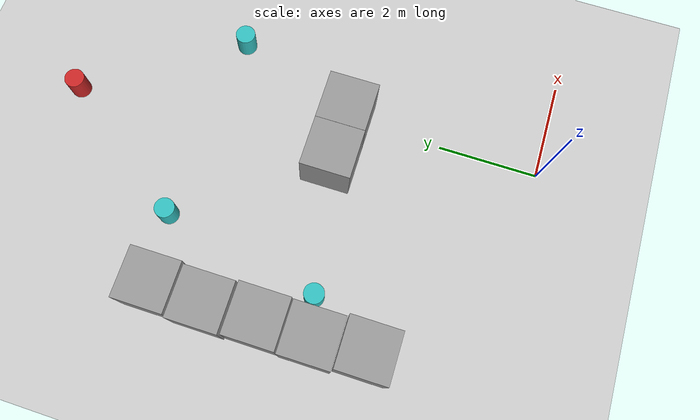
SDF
<sdf version="1.4">
 <world name="default">
  <model name="ground_plane">
   <static>1</static>
   <link name="link">
    <collision name="collision">
     <geometry><plane><normal>0 0 1</normal><size>100 100</size></plane></geometry>
     <surface><friction><ode><mu>100</mu><mu2>50</mu2></ode></friction></surface>
    </collision>
    <visual name="visual">
     <cast_shadows>0</cast_shadows>
     <geometry><plane><normal>0 0 1</normal><size>100 100</size></plane></geometry>
     <material>
      <script><uri>file://media/materials/scripts/gazebo.material</uri><name>Gazebo/Grey</name></script>
     </material>
    </visual>
    <velocity_decay><linear>0</linear><angular>0</angular></velocity_decay>
   </link>
  </model>
  <model name="unit_cylinder_9">
   <pose>1 6.5 0.24999 0 -0 0</pose>
   <link name="link">
    <inertial>
     <mass>1</mass>
     <inertia><ixx>1</ixx><ixy>0</ixy><ixz>0</ixz><iyy>1</iyy><iyz>0</iyz><izz>1</izz></inertia>
    </inertial>
    <collision name="collision">
     <geometry><cylinder><radius>0.2</radius><length>0.5</length></cylinder></geometry>
    </collision>
    <visual name="visual">
     <geometry><cylinder><radius>0.2</radius><length>0.5</length></cylinder></geometry>
     <material>
      <script><uri>file://media/materials/scripts/gazebo.material</uri><name>Gazebo/Turquoise</name></script>
     </material>
    </visual>
    <velocity_decay><linear>0</linear><angular>0</angular></velocity_decay>
   </link>
   <static>0</static>
  </model>
  <model name="unit_cylinder_10">
   <pose>-2.99219 6.73683 0.249991 0 0 -0.008078</pose>
   <link name="link">
    <inertial>
     <mass>1</mass>
     <inertia><ixx>1</ixx><ixy>0</ixy><ixz>0</ixz><iyy>1</iyy><iyz>0</iyz><izz>1</izz></inertia>
    </inertial>
    <collision name="collision">
     <geometry><cylinder><radius>0.2</radius><length>0.5</length></cylinder></geometry>
    </collision>
    <visual name="visual">
     <geometry><cylinder><radius>0.2</radius><length>0.5</length></cylinder></geometry>
     <material>
      <script><uri>file://media/materials/scripts/gazebo.material</uri><name>Gazebo/Turquoise</name></script>
     </material>
    </visual>
    <velocity_decay><linear>0</linear><angular>0</angular></velocity_decay>
   </link>
   <static>0</static>
  </model>
  <model name="unit_cylinder_12">
   <pose>-3.67883 3.50606 0.249999 0 -0 -0.30521</pose>
   <link name="link">
    <inertial>
     <mass>1</mass>
     <inertia><ixx>1</ixx><ixy>0</ixy><ixz>0</ixz><iyy>1</iyy><iyz>0</iyz><izz>1</izz></inertia>
    </inertial>
    <collision name="collision">
     <geometry><cylinder><radius>0.2</radius><length>0.5</length></cylinder></geometry>
    </collision>
    <visual name="visual">
     <geometry><cylinder><radius>0.2</radius><length>0.5</length></cylinder></geometry>
     <material>
      <script><uri>file://media/materials/scripts/gazebo.material</uri><name>Gazebo/Turquoise</name></script>
     </material>
    </visual>
    <velocity_decay><linear>0</linear><angular>0</angular></velocity_decay>
   </link>
   <static>0</static>
  </model>
  <model name="unit_cylinder_13">
   <pose>-1 9.48078 0.249991 0 0 -1.2e-05</pose>
   <link name="link">
    <inertial>
     <mass>1</mass>
     <inertia><ixx>1</ixx><ixy>0</ixy><ixz>0</ixz><iyy>1</iyy><iyz>0</iyz><izz>1</izz></inertia>
    </inertial>
    <collision name="collision">
     <geometry><cylinder><radius>0.2</radius><length>0.5</length></cylinder></geometry>
    </collision>
    <visual name="visual">
     <geometry><cylinder><radius>0.2</radius><length>0.5</length></cylinder></geometry>
     <material>
      <script><uri>file://media/materials/scripts/gazebo.material</uri><name>Gazebo/Red</name></script>
     </material>
    </visual>
    <velocity_decay><linear>0</linear><angular>0</angular></velocity_decay>
   </link>
   <static>0</static>
  </model>
  <model name="unit_box_1">
   <pose>-0.008358 4 0.5 0 -0 -2e-05</pose>
   <link name="link">
    <inertial>
     <mass>1</mass>
     <inertia><ixx>1</ixx><ixy>0</ixy><ixz>0</ixz><iyy>1</iyy><iyz>0</iyz><izz>1</izz></inertia>
    </inertial>
    <collision name="collision"><geometry><box><size>1 1 1</size></box></geometry></collision>
    <visual name="visual">
     <geometry><box><size>1 1 1</size></box></geometry>
     <material>
      <script><uri>file://media/materials/scripts/gazebo.material</uri><name>Gazebo/Grey</name></script>
     </material>
    </visual>
    <velocity_decay><linear>0</linear><angular>0</angular></velocity_decay>
   </link>
   <static>0</static>
  </model>
  <model name="unit_box_4">
   <pose>-1.00855 4.00021 0.5 0 -0 -0.000355</pose>
   <link name="link">
    <inertial>
     <mass>1</mass>
     <inertia><ixx>1</ixx><ixy>0</ixy><ixz>0</ixz><iyy>1</iyy><iyz>0</iyz><izz>1</izz></inertia>
    </inertial>
    <collision name="collision"><geometry><box><size>1 1 1</size></box></geometry></collision>
    <visual name="visual">
     <geometry><box><size>1 1 1</size></box></geometry>
     <material>
      <script><uri>file://media/materials/scripts/gazebo.material</uri><name>Gazebo/Grey</name></script>
     </material>
    </visual>
    <velocity_decay><linear>0</linear><angular>0</angular></velocity_decay>
   </link>
   <static>0</static>
  </model>
  <model name="unit_box_3_0">
   <pose>-4.38526 2.27624 0.5 0 -0 -0.000308</pose>
   <link name="link">
    <inertial>
     <mass>1</mass>
     <inertia><ixx>1</ixx><ixy>0</ixy><ixz>0</ixz><iyy>1</iyy><iyz>0</iyz><izz>1</izz></inertia>
    </inertial>
    <collision name="collision"><geometry><box><size>1 1 1</size></box></geometry></collision>
    <visual name="visual">
     <geometry><box><size>1 1 1</size></box></geometry>
     <material>
      <script><uri>file://media/materials/scripts/gazebo.material</uri><name>Gazebo/Grey</name></script>
     </material>
    </visual>
    <velocity_decay><linear>0</linear><angular>0</angular></velocity_decay>
   </link>
   <static>0</static>
  </model>
  <model name="unit_box_4_0">
   <pose>-4.44351 3.30301 0.5 0 -0 0.003541</pose>
   <link name="link">
    <inertial>
     <mass>1</mass>
     <inertia><ixx>1</ixx><ixy>0</ixy><ixz>0</ixz><iyy>1</iyy><iyz>0</iyz><izz>1</izz></inertia>
    </inertial>
    <collision name="collision"><geometry><box><size>1 1 1</size></box></geometry></collision>
    <visual name="visual">
     <geometry><box><size>1 1 1</size></box></geometry>
     <material>
      <script><uri>file://media/materials/scripts/gazebo.material</uri><name>Gazebo/Grey</name></script>
     </material>
    </visual>
    <velocity_decay><linear>0</linear><angular>0</angular></velocity_decay>
   </link>
   <static>0</static>
  </model>
  <model name="unit_box_5">
   <pose>-4.42685 4.33148 0.5 0 0 -0.000567</pose>
   <link name="link">
    <inertial>
     <mass>1</mass>
     <inertia><ixx>1</ixx><ixy>0</ixy><ixz>0</ixz><iyy>1</iyy><iyz>0</iyz><izz>1</izz></inertia>
    </inertial>
    <collision name="collision"><geometry><box><size>1 1 1</size></box></geometry></collision>
    <visual name="visual">
     <geometry><box><size>1 1 1</size></box></geometry>
     <material>
      <script><uri>file://media/materials/scripts/gazebo.material</uri><name>Gazebo/Grey</name></script>
     </material>
    </visual>
    <velocity_decay><linear>0</linear><angular>0</angular></velocity_decay>
   </link>
   <static>0</static>
  </model>
  <model name="unit_box_6">
   <pose>-4.45449 5.37477 0.5 -0 -0 -0.000312</pose>
   <link name="link">
    <inertial>
     <mass>1</mass>
     <inertia><ixx>1</ixx><ixy>0</ixy><ixz>0</ixz><iyy>1</iyy><iyz>0</iyz><izz>1</izz></inertia>
    </inertial>
    <collision name="collision"><geometry><box><size>1 1 1</size></box></geometry></collision>
    <visual name="visual">
     <geometry><box><size>1 1 1</size></box></geometry>
     <material>
      <script><uri>file://media/materials/scripts/gazebo.material</uri><name>Gazebo/Grey</name></script>
     </material>
    </visual>
    <velocity_decay><linear>0</linear><angular>0</angular></velocity_decay>
   </link>
   <static>0</static>
  </model>
  <model name="unit_box_7">
   <pose>-4.41333 6.41284 0.5 0 0 -0.000277</pose>
   <link name="link">
    <inertial>
     <mass>1</mass>
     <inertia><ixx>1</ixx><ixy>0</ixy><ixz>0</ixz><iyy>1</iyy><iyz>0</iyz><izz>1</izz></inertia>
    </inertial>
    <collision name="collision"><geometry><box><size>1 1 1</size></box></geometry></collision>
    <visual name="visual">
     <geometry><box><size>1 1 1</size></box></geometry>
     <material>
      <script><uri>file://media/materials/scripts/gazebo.material</uri><name>Gazebo/Grey</name></script>
     </material>
    </visual>
    <velocity_decay><linear>0</linear><angular>0</angular></velocity_decay>
   </link>
   <static>0</static>
  </model>
 </world>
</sdf>
